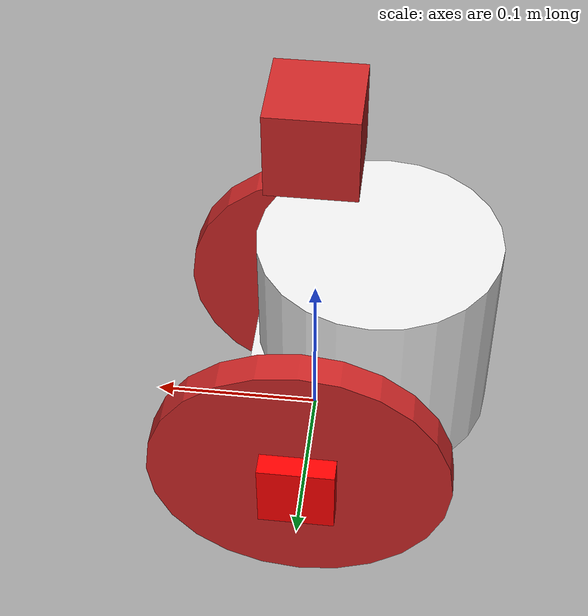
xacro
<?xml version="1.0"?>
<robot name="tbot" xmlns:xacro="http://www.ros.org/wiki/xacro">

  <!-- Included URDF/XACRO Files -->
  <xacro:include filename="$(find tbot)/urdf/common.urdf.xacro" />
  <xacro:include filename="$(find tbot)/urdf/wheel.urdf.xacro" />
  <xacro:include filename="$(find tbot)/urdf/caster.urdf.xacro" />
  <xacro:include filename="$(find tbot)/urdf/lidar.urdf.xacro" />

  <!-- base_footprint Definition -->
  <link name="base_footprint" />

  <!-- base Definition -->
  <link name="base_link">
    <origin xyz="0 0 0" rpy="0 0 0"/>
    <visual>
      <geometry>
        <box size="0.069 0.138 0.050"/>
      </geometry>
      <material name="White" />
    </visual>
    <inertial>
      <mass value="0.2" />
      <origin xyz="0 0 0" rpy="0 0 0" />
      <xacro:box_inertia m="0.2" x="0.069" y="0.138" z="0.050" />
    </inertial>
  </link>

  <gazebo reference="base_link">
    <material>Gazebo/White</material>
    <turnGravityOff>false</turnGravityOff>
  </gazebo>

  <joint name="base_joint" type="fixed">
    <origin xyz="0 0 0.045" rpy="0 0 0" />
    <parent link="base_footprint" />
    <child  link="base_link" />
  </joint>

  <!-- body Definition -->
  <link name="body_link">
    <origin xyz="0 0 0" rpy="0 0 0"/>
    <visual>
      <geometry>
        <cylinder radius="0.069" length="0.122" />
      </geometry>
      <material name="White" />
    </visual>
    <inertial>
      <mass value="0.3" />
      <origin xyz="0 0 0" rpy="0 0 0" />
        <xacro:cylinder_inertia  m="0.3" r="0.069" h="0.122" />
    </inertial>
  </link>

  <gazebo reference="body_link">
    <material>Gazebo/White</material>
    <turnGravityOff>false</turnGravityOff>
  </gazebo>

  <joint name="body_joint" type="fixed">
    <origin xyz="-0.036 0 0.081" rpy="0 0 0" />
    <parent link="base_footprint" />
    <child  link="body_link" />
  </joint>

  <!-- Wheel Definitions -->
  <xacro:wheel sub="l" parent="base_footprint"
    transX="0" transY="0.080"  transZ="0.033" />
  <xacro:wheel sub="r" parent="base_footprint"
    transX="0" transY="-0.080"  transZ="0.033" />

  <!-- Caster Definition -->
  <xacro:caster sub="0" parent="base_footprint"
    transX="-0.080" transY="0" transZ="0.020" />

  <!-- Differential drive controller  -->
  <gazebo>
    <plugin name="differential_drive_controller"
      filename="libgazebo_ros_diff_drive.so">
      <commandTopic>cmd_vel</commandTopic>
      <odometryTopic>odom</odometryTopic>
      <odometryFrame>odom</odometryFrame>
      <odometrySource>world</odometrySource>
      <robotBaseFrame>base_footprint</robotBaseFrame>
      <publishOdomTF>true</publishOdomTF>
      <publishWheelTF>false</publishWheelTF>
      <publishTf>1</publishTf>
      <publishWheelJointState>false</publishWheelJointState>
      <legacyMode>false</legacyMode>
      <updateRate>30</updateRate>
      <leftJoint>wheel_l_joint</leftJoint>
      <rightJoint>wheel_r_joint</rightJoint>
      <wheelSeparation>0.160</wheelSeparation>
      <wheelDiameter>0.066</wheelDiameter>
      <wheelAcceleration>1.8</wheelAcceleration>
      <wheelTorque>10</wheelTorque>
      <rosDebugLevel>Debug</rosDebugLevel>
    </plugin>
  </gazebo>

  <link name="gps_link" />
    <joint name="gps_joint" type="fixed">
      <parent link="base_link" />
      <child link="gps_link" />
    </joint>

  <gazebo>
      <plugin name="gps" filename="libhector_gazebo_ros_gps.so">
          <updateRate>10.0</updateRate>
          <topicName>gps/fix</topicName>
          <gaussianNoise>0.0 0.0 0.0</gaussianNoise>
          <offset>0 0 0</offset>
          <velocityGaussianNoise>0 0 0</velocityGaussianNoise>
          <frameId>gps_link</frameId>
      </plugin>
  </gazebo>

  <!-- Camera -->
  <xacro:property name="camera_link" value="0.05" /> <!-- Size of square 'camera' box -->

  <joint name="camera_joint" type="fixed">
    <axis xyz="0 1 0" />
    <origin xyz="0.0 0.0 0.17" rpy="0 0 0"/>
    <parent link="base_link"/>
    <child link="camera_link"/>
  </joint>

  <link name="camera_link">
    <collision>
      <origin xyz="0 0 0" rpy="0 0 0"/>
      <geometry>
    <box size="${camera_link} ${camera_link} ${camera_link}"/>
      </geometry>
    </collision>

    <visual>
      <origin xyz="0 0 0" rpy="0 0 0"/>
      <geometry>
    <box size="${camera_link} ${camera_link} ${camera_link}"/>
      </geometry>
      <material name="red"/>
    </visual>

    <inertial>
      <mass value="1e-5" />
      <origin xyz="0 0 0" rpy="0 0 0"/>
      <inertia ixx="1e-6" ixy="0" ixz="0" iyy="1e-6" iyz="0" izz="1e-6" />
    </inertial>
  </link>

   <gazebo reference="camera_link">
    <sensor type="camera" name="camera1">
      <update_rate>30.0</update_rate>
      <camera name="head">
        <horizontal_fov>1.3962634</horizontal_fov>
        <image>
          <width>640</width>
          <height>320</height>
          <format>R8G8B8</format>
        </image>
        <clip>
          <near>0.02</near>
          <far>300</far>
        </clip>
        <noise>
          <type>gaussian</type>
          <!-- Noise is sampled independently per pixel on each frame.
               That pixel's noise value is added to each of its color
               channels, which at that point lie in the range [0,1]. -->
          <mean>0.0</mean>
          <stddev>0.007</stddev>
        </noise>
      </camera>
      <plugin name="camera_controller" filename="libgazebo_ros_camera.so">
        <alwaysOn>true</alwaysOn>
        <updateRate>0.0</updateRate>
        <cameraName>camera1</cameraName>
        <imageTopicName>image_raw</imageTopicName>
        <cameraInfoTopicName>camera_info</cameraInfoTopicName>
        <frameName>camera_link</frameName>
        <hackBaseline>0.07</hackBaseline>
        <distortionK1>0.0</distortionK1>
        <distortionK2>0.0</distortionK2>
        <distortionK3>0.0</distortionK3>
        <distortionT1>0.0</distortionT1>
        <distortionT2>0.0</distortionT2>
      </plugin>
    </sensor>
  </gazebo>

</robot>

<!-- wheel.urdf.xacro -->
<robot name="wheel" xmlns:xacro="http://www.ros.org/wiki/xacro">

  <!-- Wheels -->
  <xacro:property name="wheel_radius" value="0.088" /> <!-- in m -->
  <xacro:property name="wheel_width"  value="0.018" /> <!-- in m -->
  <xacro:property name="wheel_mass"   value="3.100" /> <!-- in kg-->

  <xacro:macro name="wheel" params="sub parent transX transY transZ">
    <!-- sub: l,r 0,1,2,3 etc -->
    <!-- parent: parent link name -->
    <!-- transX transY transZ: xyz position -->

    <link name="wheel_${sub}">
      <visual>
        <origin xyz="0 0 0" rpy="${M_PI/2} 0 0" />
        <geometry>
          <cylinder length="${wheel_width}" radius="${wheel_radius}" />
        </geometry>
        <material name="Red" />
      </visual>
      <collision>
        <origin xyz="0 0 0" rpy="${M_PI/2} 0 0" />
        <geometry>
          <cylinder radius="${wheel_radius}" length="${wheel_width}" />
        </geometry>
      </collision>
      <inertial>
        <mass value="${wheel_mass}" />
        <origin xyz="0 0 0" />
        <xacro:cylinder_inertia  m="${wheel_mass}"
          r="${wheel_radius}" h="${wheel_width}" />
      </inertial>
    </link>

    <gazebo reference="wheel_${sub}">
      <material>Gazebo/Red</material>
      <turnGravityOff>false</turnGravityOff>
      <mu1 value="10000.0"/>
      <mu2 value="10000.0"/>
      <kp  value="1000000.0" />
      <kd  value="100.0" />
      <fdir1 value="1 1 0"/>
    </gazebo>

    <joint name="wheel_${sub}_joint" type="continuous">
      <parent link="${parent}"/>
      <child link="wheel_${sub}"/>
      <origin xyz="${transX} ${transY} ${transZ}" rpy="0 0 0" />
      <axis xyz="0 1 0"/>
      <limit effort="1000" velocity="100"/>
      <joint_properties damping="0.0" friction="0.0"/>
    </joint>

    <link name="${sub}_box_link">
      <inertial>
        <origin xyz="0.0 0.0 0.0" rpy="0.0 0.0 0.0"/>
        <mass value="0.0"/>
        <inertia ixx="0.0" ixy="0.0" ixz="0.0" iyy="0.0" iyz="0.0" izz="0.0"/>
      </inertial>
      <visual name="">
        <origin xyz="0.0 0.0 0.0" rpy="0.0 0.0 0.0"/>
        <geometry>
          <box size="${wheel_radius/2} ${wheel_radius/2} ${wheel_radius/2}"/>
        </geometry>
        <material name="">
          <color rgba="1.0 0.0 0.0 1.0"/>
          <texture filename=""/>
        </material>
      </visual>
      <collision>
        <origin xyz="0.0 0.0 0.0" rpy="0.0 0.0 0.0"/>
        <geometry>
          <box size="0.0 0.0 0.0"/>
        </geometry>
      </collision>
    </link>

    <joint name="${sub}_box_joint" type="fixed">
      <parent link="wheel_${sub}"/>
      <child link="${sub}_box_link"/>
      <origin xyz="0 0 0" rpy="0 0 0" />

    </joint>

  </xacro:macro>
</robot>

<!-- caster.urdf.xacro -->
<robot name="caster" xmlns:xacro="http://www.ros.org/wiki/xacro">

  <!-- Casters -->
  <xacro:property name="caster_radius" value="0.018" /> <!-- in m -->
  <xacro:property name="caster_mass"   value="0.100" /> <!-- in kg-->

  <xacro:macro name="caster" params="sub parent transX transY transZ">
    <!-- sub: l,r 0,1,2,3 etc -->
    <!-- parent: parent link name -->
    <!-- transX transY transZ: xyz position -->

    <link name="caster_${sub}">
      <visual>
        <origin xyz="0 0 0" rpy="0 0 0" />
        <geometry>
          <sphere radius="${caster_radius}" />
        </geometry>
        <material name="Black" />
      </visual>
      <collision>
        <origin xyz="0 0 0" rpy="0 0 0" />
        <geometry>
          <sphere radius="${caster_radius}" />
        </geometry>
      </collision>
      <inertial>
        <mass value="${caster_mass}" />
        <origin xyz="0 0 0" />
        <xacro:sphere_inertia m="${caster_mass}" r="${caster_radius}" />
      </inertial>
    </link>

    <gazebo reference="caster_${sub}">
      <turnGravityOff>false</turnGravityOff>
      <material>Gazebo/Black</material>
      <mu1 value="0.0"/>
      <mu2 value="0.0"/>
    </gazebo>

    <joint name="caster_${sub}_joint" type="fixed">
      <parent link="${parent}"/>
      <child link="caster_${sub}"/>
      <origin xyz="${transX} ${transY} ${transZ}" rpy="0 0 0" />
    </joint>

  </xacro:macro>
</robot>
